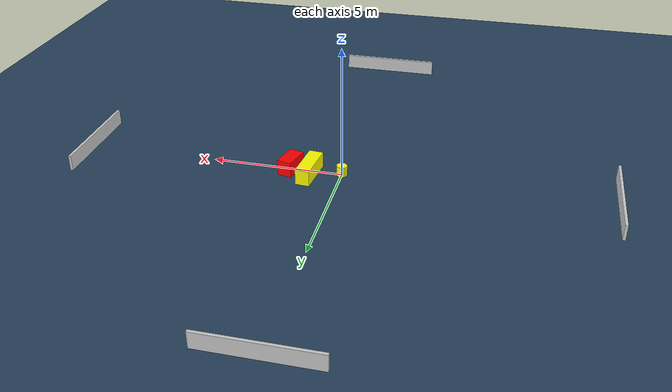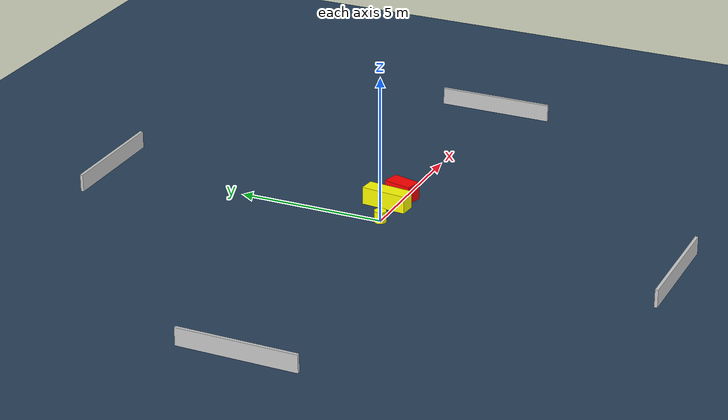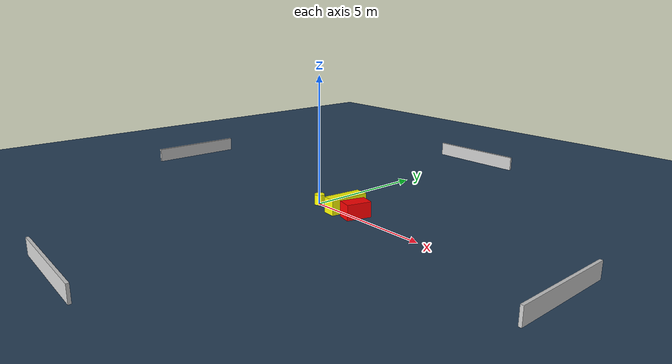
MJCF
<?xml version="1.0" ?>
<mujoco model="generated_environment">
  <option timestep="0.01" integrator="RK4" cone="elliptic"/>
  <default>
    <geom density="1"/>
  </default>
  <asset>
    <texture builtin="gradient" height="3072" name="skybox" rgb1="0.3 0.5 0.7" rgb2="0 0 0" type="skybox" width="512"/>
    <texture builtin="checker" height="300" name="groundplane" rgb1="0.2 0.3 0.4" rgb2="0.1 0.2 0.3" type="2d" width="300"/>
    <material name="groundplane" reflectance="0.2" texrepeat="5 5" texture="groundplane"/>
  </asset>
  <worldbody>
    <light dir="0 0 -1" directional="true" pos="0 0 1.5"/>
    <geom condim="3" friction="0.5 0.005 0.001" material="groundplane" name="floor" pos="0 0 0" size="0 0 0.05" type="plane"/>
    <body name="walls">
      <geom name="wall_1" condim="4" pos="-10.0 0.0 0.3" rgba="0.800000011920929 0.800000011920929 0.800000011920929 1.0" size="0.05 2.0 0.3" type="box"/>
      <geom name="wall_2" condim="4" pos="10.0 0.0 0.3" rgba="0.800000011920929 0.800000011920929 0.800000011920929 1.0" size="0.05 2.0 0.3" type="box"/>
      <geom name="wall_3" condim="4" pos="0.0 -10.0 0.3" rgba="0.800000011920929 0.800000011920929 0.800000011920929 1.0" size="2.0 0.05 0.3" type="box"/>
      <geom name="wall_4" condim="4" pos="0.0 10.0 0.3" rgba="0.800000011920929 0.800000011920929 0.800000011920929 1.0" size="2.0 0.05 0.3" type="box"/>
    </body>
    <body name="robot">
      <joint name="joint_x" type="slide" pos="0 0 0" axis="1 0 0"/>
      <joint name="joint_y" type="slide" pos="0 0 0" axis="0 1 0"/>
      <geom name="robot" type="cylinder" pos="0.0 0.0 0.2" size="0.2 0.2 0.0" mass="5.0" friction="1.0 0.005 0.0001" condim="4" rgba="1.0 1.0 0.0 1.0"/>
    </body>
    <body name="obstacle_1_movable">
      <geom name="obstacle_1_movable" condim="4" pos="1.1806840848028402 0.2964104434425448 0.3" euler="0 0 264.6121541854337" friction="0.0 0.005 0.001" rgba="1.0 1.0 0.0 1.0" size="0.77435699575901 0.2666135858049023 0.3" type="box" mass="0.1"/>
      <joint type="free"/>
    </body>
    <body name="obstacle_2_static">
      <geom name="obstacle_2_static" condim="4" pos="1.9565793600346715 0.10127425327942469 0.3" euler="0 0 345.5676184607338" friction="0.0 0.005 0.001" rgba="1.0 0.0 0.0 1.0" size="0.28068794258342 0.4880942496958821 0.3" type="box"/>
    </body>
  </worldbody>
  <actuator>
    <motor name="actuator_x" joint="joint_x" gear="1" ctrlrange="-1 1"/>
    <motor name="actuator_y" joint="joint_y" gear="1" ctrlrange="-1 1"/>
  </actuator>
</mujoco>
